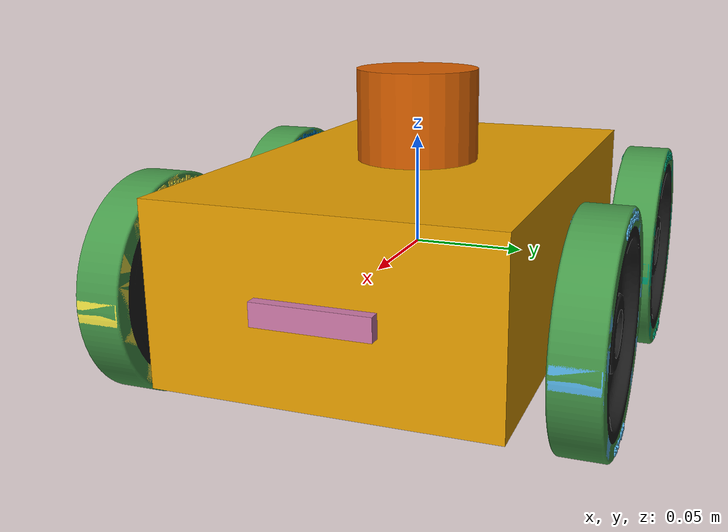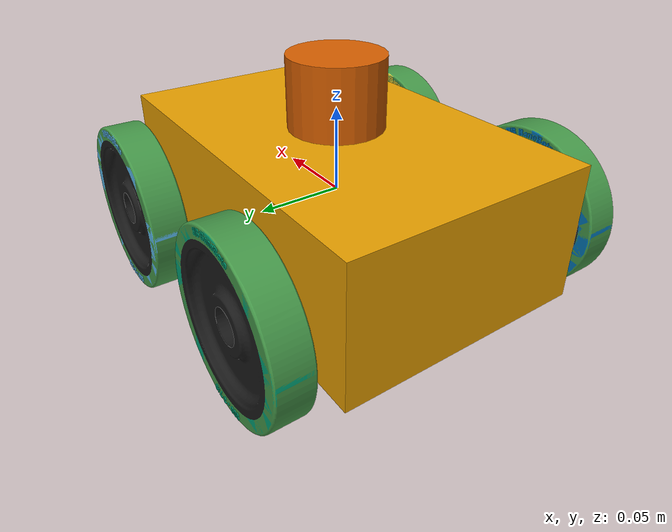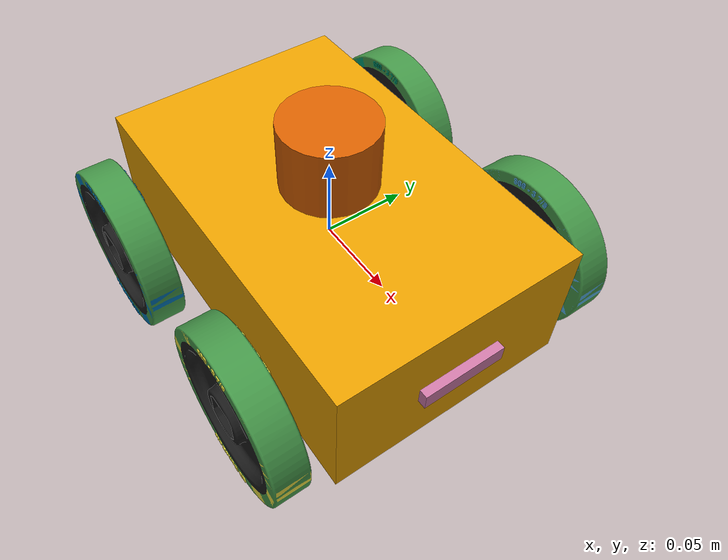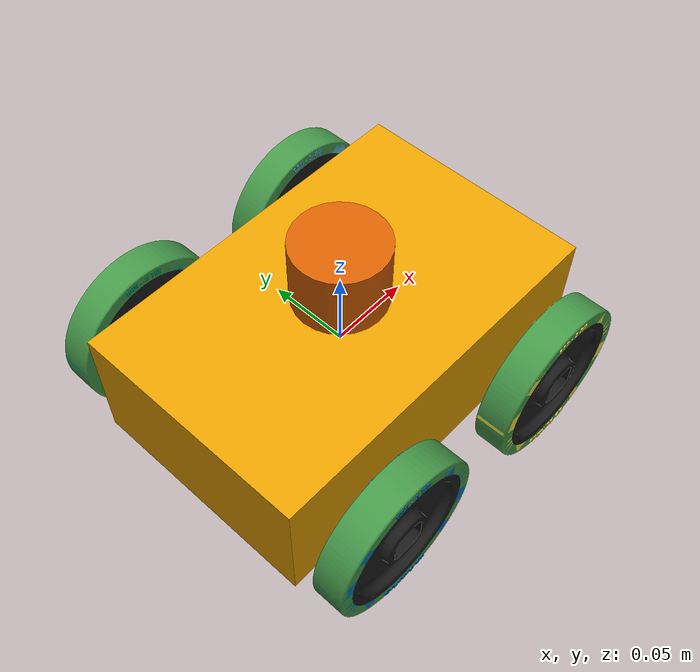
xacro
<?xml version="1.0"?>
<robot name="rookie" xmlns:xacro="http://www.ros.org/wiki/xacro">

    <!-- Wheelbase: center to center distance between front and back wheels -->
    <xacro:property name="wheel_base" value="0.129" />
    <!-- Track width: center to center distance between left and right wheels -->
    <!-- TODO: need to widen the robot (or make the wheel_base shorter) so that it can
         actually turn in place. -->
    <xacro:property name="track_width" value="${0.204 + .02}" />
    <!-- Ground clearance: distance from bottom of chassis to the ground -->
    <xacro:property name="ground_clearance" value="0.020" /> <!-- approximate -->

    <!-- Base dimensions -->
    <xacro:property name="base_length" value="0.226155" />
    <xacro:property name="base_width" value="0.147" />
    <xacro:property name="base_height" value="0.079" />
    <xacro:property name="base_mass" value="2" /> <!-- just a guess -->

    <!-- Critical dimensions of the wheels-->
    <xacro:property name="wheel_width" value="0.02032" />
    <xacro:property name="wheel_diameter" value="0.098425" />
    <!-- clearance between wheel and body -->
    <xacro:property name="wheel_clearance" value="0.00546" />
    <xacro:property name="wheel_mass" value="0.0992233" />
    <xacro:property name="left_right_wheel_spacing" value="${track_width - (wheel_width * 2)}" />

    <!-- Motor params -->
    <xacro:property name="drive_motor_torque_kg_cm" value="5" />

    <!-- Rather than deal with whatever URDF/SDF package-finding weirdness Gazebo has going on,
         just get our mesh paths directly here so we can use them later.-->
    <xacro:property name="mesh_directory" value="$(find rookie_description)/meshes/" />

    <!-- Macros -->
    <xacro:include filename="$(find rookie_description)/urdf/macros.xacro" />

    <xacro:macro name="wheel_dimensions" params="mirror_y">
        <origin xyz="0 ${mirror_y * wheel_width / 2} 0" rpy="1.570796327 0 0"/>
        <geometry>
            <cylinder length="${wheel_width}" radius="${wheel_diameter / 2}" />
        </geometry>
    </xacro:macro>

    <xacro:macro name="wheel_joint" params="wheel_name mirror_x mirror_y">
        <parent link="base_link" />
        <child link="${wheel_name}" />
        <origin
            xyz="${(wheel_base / 2) * mirror_x}
                 ${((left_right_wheel_spacing / 2) + wheel_clearance - ((mirror_y * wheel_width) / 2)) * mirror_y}
                 ${-(base_height / 2) - ground_clearance + (wheel_diameter / 2)}"
            rpy="0.0 0.0 0.0"/>
        <axis xyz="0 1 0" />
    </xacro:macro>
    <!-- /Macros -->

    <link name="base_link">
        <visual>
            <geometry>
                <box size="${base_length} ${base_width} ${base_height}"/>
            </geometry>
        </visual>
        <collision>
            <geometry>
                <box size="${base_length} ${base_width} ${base_height}"/>
            </geometry>
        </collision>
        <xacro:box_inertia name="base_link" mass="2" width="${base_width}" height="${base_height}" length="${base_length}" />
    </link>

    <link name="front_left_wheel">
        <visual>
            <origin rpy="0.0 0.0 3.14159" xyz="0.0 0.0 0.0" />
            <geometry>
                <mesh filename="${mesh_directory}/Banebots_T81_Wheel.dae"/>
            </geometry>
        </visual>
        <collision>
            <xacro:wheel_dimensions mirror_y="-1" />
        </collision>
        <xacro:cylinder_inertia name="front_left_wheel" radius="${wheel_diameter / 2}" height="${wheel_width}" mass="${wheel_mass}" />
    </link>
    <joint name="front_left_wheel_joint" type="continuous">
        <xacro:wheel_joint wheel_name="front_left_wheel" mirror_x="1" mirror_y="1" />
    </joint>

    <link name="rear_left_wheel">
        <visual>
            <origin rpy="0.0 0.0 3.14159" xyz="0.0 0.0 0.0" />
            <geometry>
                <mesh filename="${mesh_directory}/Banebots_T81_Wheel.dae"/>
            </geometry>
        </visual>
        <collision>
            <xacro:wheel_dimensions mirror_y="-1" />
        </collision>
        <xacro:cylinder_inertia name="rear_left_wheel" radius="${wheel_diameter / 2}" height="${wheel_width}" mass="${wheel_mass}" />
    </link>
    <joint name="rear_left_wheel_joint" type="continuous">
        <xacro:wheel_joint wheel_name="rear_left_wheel" mirror_x="-1" mirror_y="1" />
    </joint>

    <link name="front_right_wheel">
        <visual>
            <origin rpy="0.0 0.0 3.14159" xyz="0.0 0.0 0.0" />
            <geometry>
                <mesh filename="${mesh_directory}/Banebots_T81_Wheel.dae"/>
            </geometry>
        </visual>
        <collision>
            <xacro:wheel_dimensions mirror_y="1"/>
        </collision>
        <xacro:cylinder_inertia name="front_right_wheel" radius="${wheel_diameter / 2}" height="${wheel_width}" mass="${wheel_mass}" />
    </link>
    <joint name="front_right_wheel_joint" type="continuous">
        <xacro:wheel_joint wheel_name="front_right_wheel" mirror_x="1" mirror_y="-1" />
    </joint>

    <link name="rear_right_wheel">
        <visual>
            <origin rpy="0.0 0.0 3.14159" xyz="0.0 0.0 0.0" />
            <geometry>
                <mesh filename="${mesh_directory}/Banebots_T81_Wheel.dae"/>
            </geometry>
        </visual>
        <collision>
            <xacro:wheel_dimensions mirror_y="1"/>
        </collision>
        <xacro:cylinder_inertia name="rear_right_wheel" radius="${wheel_diameter / 2}" height="${wheel_width}" mass="${wheel_mass}" />
    </link>
    <joint name="rear_right_wheel_joint" type="continuous">
        <xacro:wheel_joint wheel_name="rear_right_wheel" mirror_x="-1" mirror_y="-1" />
    </joint>

    <link name="lidar_slamtec_c1">
        <visual>
            <origin rpy="0.0 0.0 0.0" xyz="0.0 0.0 0.0" />
            <geometry>
                <cylinder length="0.0413" radius="0.0278" />
            </geometry>
        </visual>
        <collision>
            <geometry>
                <cylinder length="0.0413" radius="0.0278" />
            </geometry>
        </collision>
    </link>
    <joint name="lidar_joint" type="fixed">
        <parent link="base_link" />
        <child link="lidar_slamtec_c1" />
        <origin
            xyz="0 0 ${(base_height / 2) + (0.0413 / 2)}"
            rpy="0.0 0.0 0"/>
    </joint>

    <link name="camera">
        <static>true</static>
        <visual name='visual'>
            <geometry>
                <box size="0.01 0.05 0.01" />
            </geometry>
        </visual>
    </link>
    <joint name="camera_joint" type="fixed">
        <parent link="base_link" />
        <child link="camera" />
        <origin
            xyz="${base_length / 2} 0 0"
            rpy="0.0 0.0 0"/>
    </joint>

    <link name="imu" type="fixed">
        <static>true</static>
        <visual name='visual'>
            <geometry>
                <box size="0.01 0.01 0.01" />
            </geometry>
        </visual>
    </link>
    <joint name="imu_joint" type="fixed">
        <parent link="base_link" />
        <child link="imu" />
        <origin
            xyz="0.0 0.0 0.0"
            rpy="0.0 0.0 0"/>
    </joint>

    <!-- Gazebo-specific -->
    <xacro:include filename="$(find rookie_description)/urdf/rookie.gazebo.xacro" />

</robot>

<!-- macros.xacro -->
<robot xmlns:xacro="http://www.ros.org/wiki/xacro">

    <xacro:macro name="box_inertia" params="name mass width height length">
        <inertial name="${name}_inertia">
            <mass value="${mass}" />
            <!-- 3D inertia tensor from: https://en.wikipedia.org/wiki/List_of_moments_of_inertia -->
            <inertia ixx="${mass*((height*height)+(length*length))/12}" ixy="0.0" ixz="0.0"
                     iyy="${mass*((height*height)+(width*width))/12}" iyz="0.0"
                     izz="${mass*((length*length)+(width*width))/12}" />
        </inertial>
    </xacro:macro>

    <xacro:macro name="cylinder_inertia" params="name radius height mass">
        <inertial name="${name}_inertia">
            <mass value="${mass}" />
            <!-- 3D inertia tensor from: https://en.wikipedia.org/wiki/List_of_moments_of_inertia -->
            <inertia ixx="${mass * ((3 * (radius*radius)) + (height*height)) / 12}" ixy="0" ixz="0"
                     iyy="${mass * ((3 * (radius*radius)) + (height*height)) / 12}" iyz="0"
                     izz="${mass * (radius*radius) / 2}" />
        </inertial>
    </xacro:macro>

</robot>
